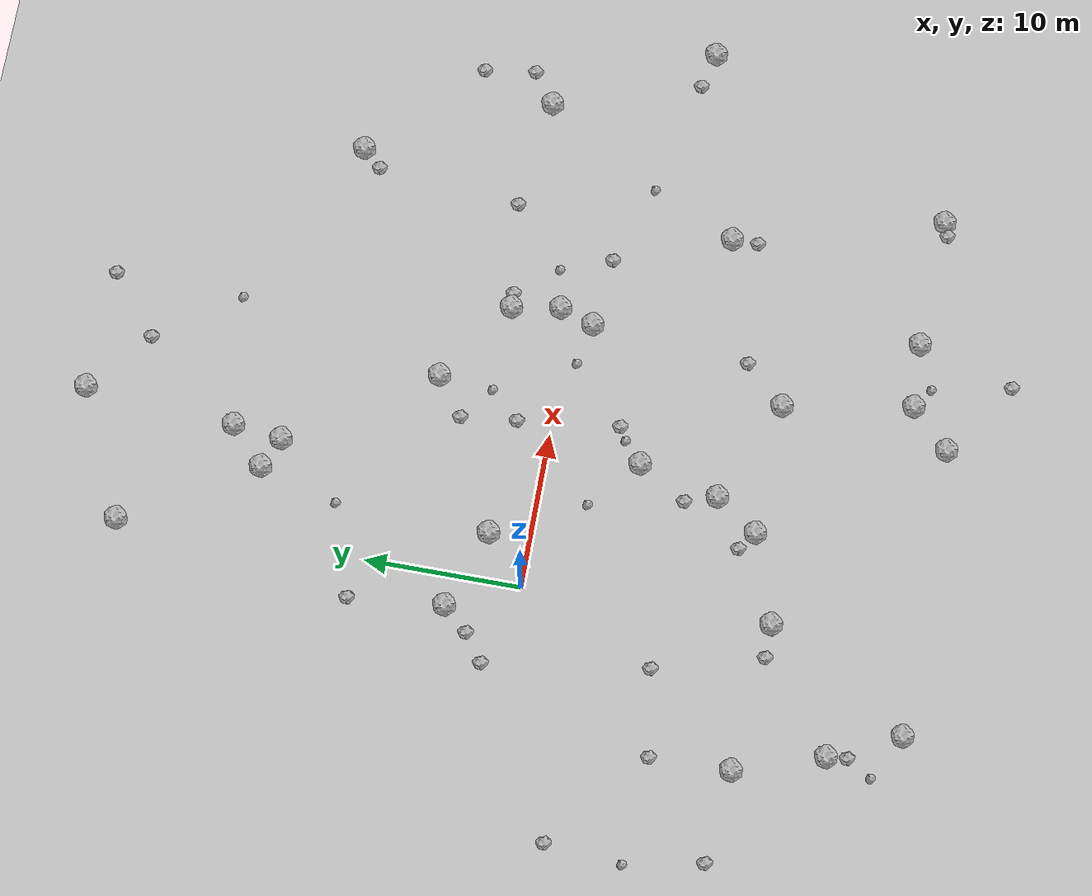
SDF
<sdf version="1.6">
 <world name="default">
  <include><uri>model://custom_ground</uri></include>
  <include><uri>model://sun</uri></include>
  <model name="rock1_0_0">
   <include><uri>model://rock1</uri><pose>-0.13717001291943376 25.787154543660918 0.5 0 0 0</pose></include>
  </model>
  <model name="rock1_0_1">
   <include><uri>model://rock1</uri><pose>4.755294397749029 17.537682692599823 0.5 0 0 0</pose></include>
  </model>
  <model name="rock1_0_2">
   <include><uri>model://rock1</uri><pose>14.438561846816263 -14.088238945821857 0.5 0 0 0</pose></include>
  </model>
  <model name="rock1_0_3">
   <include><uri>model://rock1</uri><pose>18.343334891461048 0.8101133850448186 0.5 0 0 0</pose></include>
  </model>
  <model name="rock1_0_4">
   <include><uri>model://rock1</uri><pose>7.934947623881193 29.443009117658633 0.5 0 0 0</pose></include>
  </model>
  <model name="rock1_0_5">
   <include><uri>model://rock1</uri><pose>6.005714709265444 -13.76198931600267 0.5 0 0 0</pose></include>
  </model>
  <model name="rock1_0_6">
   <include><uri>model://rock1</uri><pose>6.742528823899189 16.622186876741225 0.5 0 0 0</pose></include>
  </model>
  <model name="rock1_0_7">
   <include><uri>model://rock1</uri><pose>3.082100766277584 2.6522618058660825 0.5 0 0 0</pose></include>
  </model>
  <model name="rock1_0_8">
   <include><uri>model://rock1</uri><pose>9.127228379113777 -5.91440779899375 0.5 0 0 0</pose></include>
  </model>
  <model name="rock1_0_9">
   <include><uri>model://rock1</uri><pose>19.98494203032096 -22.07028369685764 0.5 0 0 0</pose></include>
  </model>
  <model name="rock1_0_10">
   <include><uri>model://rock1</uri><pose>24.811240526510602 -9.189557394420866 0.5 0 0 0</pose></include>
  </model>
  <model name="rock1_0_11">
   <include><uri>model://rock1</uri><pose>7.872476988000852 -11.043745803397222 0.5 0 0 0</pose></include>
  </model>
  <model name="rock1_0_12">
   <include><uri>model://rock1</uri><pose>12.601587128168205 7.579184512274907 0.5 0 0 0</pose></include>
  </model>
  <model name="rock1_0_13">
   <include><uri>model://rock1</uri><pose>17.61642601987898 -1.388534608510696 0.5 0 0 0</pose></include>
  </model>
  <model name="rock1_0_14">
   <include><uri>model://rock1</uri><pose>0.4175088909901419 -15.674244092253709 0.5 0 0 0</pose></include>
  </model>
  <model name="rock1_0_15">
   <include><uri>model://rock1</uri><pose>15.86766222540777 -22.288233859832335 0.5 0 0 0</pose></include>
  </model>
  <model name="rock1_0_16">
   <include><uri>model://rock1</uri><pose>26.712938988913102 15.159791982546686 0.5 0 0 0</pose></include>
  </model>
  <model name="rock1_0_17">
   <include><uri>model://rock1</uri><pose>13.399954540065664 -24.73991786673274 0.5 0 0 0</pose></include>
  </model>
  <model name="rock1_0_18">
   <include><uri>model://rock1</uri><pose>17.841486683517367 3.8988279427927566 0.5 0 0 0</pose></include>
  </model>
  <model name="rock1_0_19">
   <include><uri>model://rock1</uri><pose>-9.06617865886642 -14.71626676128436 0.5 0 0 0</pose></include>
  </model>
  <model name="rock1_0_20">
   <include><uri>model://rock1</uri><pose>-7.199097823117505 -20.317903175617555 0.5 0 0 0</pose></include>
  </model>
  <model name="rock1_0_21">
   <include><uri>model://rock1</uri><pose>28.329822835398595 -22.413514123052458 0.5 0 0 0</pose></include>
  </model>
  <model name="rock1_0_22">
   <include><uri>model://rock1</uri><pose>7.1317383234388885 19.758631122728573 0.5 0 0 0</pose></include>
  </model>
  <model name="rock1_0_23">
   <include><uri>model://rock1</uri><pose>-1.9601667741429623 4.525267203646457 0.5 0 0 0</pose></include>
  </model>
  <model name="rock1_0_24">
   <include><uri>model://rock1</uri><pose>37.107611091518855 -6.110001650317422 0.5 0 0 0</pose></include>
  </model>
  <model name="rock1_0_25">
   <include><uri>model://rock1</uri><pose>-5.1066198707219925 -24.76074350758809 0.5 0 0 0</pose></include>
  </model>
  <model name="rock1_0_26">
   <include><uri>model://rock1</uri><pose>31.873386687712788 3.7615670159366275 0.5 0 0 0</pose></include>
  </model>
  <model name="rock2_0_0">
   <include><uri>model://rock2</uri><pose>-15.505533679320898 -4.191615136256125 0.3 0 0 0</pose></include>
  </model>
  <model name="rock2_0_1">
   <include><uri>model://rock2</uri><pose>15.664136243920538 29.156066775808462 0.3 0 0 0</pose></include>
  </model>
  <model name="rock2_0_2">
   <include><uri>model://rock2</uri><pose>24.83080728630417 -10.860275217173086 0.3 0 0 0</pose></include>
  </model>
  <model name="rock2_0_3">
   <include><uri>model://rock2</uri><pose>11.888701404437157 26.08027218640691 0.3 0 0 0</pose></include>
  </model>
  <model name="rock2_0_4">
   <include><uri>model://rock2</uri><pose>-3.441075141844351 2.9077247807568725 0.3 0 0 0</pose></include>
  </model>
  <model name="rock2_0_5">
   <include><uri>model://rock2</uri><pose>-5.1742602773557085 1.6482350600616194 0.3 0 0 0</pose></include>
  </model>
  <model name="rock2_0_6">
   <include><uri>model://rock2</uri><pose>22.09416843919969 -1.9194810866440513 0.3 0 0 0</pose></include>
  </model>
  <model name="rock2_0_7">
   <include><uri>model://rock2</uri><pose>-1.7261564692264777 -15.651298210043453 0.3 0 0 0</pose></include>
  </model>
  <model name="rock2_0_8">
   <include><uri>model://rock2</uri><pose>18.810477787363226 3.952699722879295 0.3 0 0 0</pose></include>
  </model>
  <model name="rock2_0_9">
   <include><uri>model://rock2</uri><pose>4.8237271269217175 -12.893000180496863 0.3 0 0 0</pose></include>
  </model>
  <model name="rock2_0_10">
   <include><uri>model://rock2</uri><pose>33.85915778559707 5.227087870460387 0.3 0 0 0</pose></include>
  </model>
  <model name="rock2_0_11">
   <include><uri>model://rock2</uri><pose>-9.158188849551571 -9.604825247174823 0.3 0 0 0</pose></include>
  </model>
  <model name="rock2_0_12">
   <include><uri>model://rock2</uri><pose>24.746320326775454 4.7264321363283415 0.3 0 0 0</pose></include>
  </model>
  <model name="rock2_0_13">
   <include><uri>model://rock2</uri><pose>25.593575124300436 13.959871537229454 0.3 0 0 0</pose></include>
  </model>
  <model name="rock2_0_14">
   <include><uri>model://rock2</uri><pose>-3.6651809263949247 -8.7746673910484 0.3 0 0 0</pose></include>
  </model>
  <model name="rock2_0_15">
   <include><uri>model://rock2</uri><pose>-7.056426561365296 -21.63155775140372 0.3 0 0 0</pose></include>
  </model>
  <model name="rock2_0_16">
   <include><uri>model://rock2</uri><pose>-2.557756205376453 10.60147358255351 0.3 0 0 0</pose></include>
  </model>
  <model name="rock2_0_17">
   <include><uri>model://rock2</uri><pose>-14.983702069043488 -14.078534943867325 0.3 0 0 0</pose></include>
  </model>
  <model name="rock2_0_18">
   <include><uri>model://rock2</uri><pose>33.404064493828024 8.494527970908209 0.3 0 0 0</pose></include>
  </model>
  <model name="rock2_0_19">
   <include><uri>model://rock2</uri><pose>7.22022324230435 -9.043388758126007 0.3 0 0 0</pose></include>
  </model>
  <model name="rock2_0_20">
   <include><uri>model://rock2</uri><pose>16.8429033490402 -11.51908300537459 0.3 0 0 0</pose></include>
  </model>
  <model name="rock2_0_21">
   <include><uri>model://rock2</uri><pose>10.154396560830591 5.790304456932901 0.3 0 0 0</pose></include>
  </model>
  <model name="rock2_0_22">
   <include><uri>model://rock2</uri><pose>34.792454512386506 -5.523801355680217 0.3 0 0 0</pose></include>
  </model>
  <model name="rock2_0_23">
   <include><uri>model://rock2</uri><pose>11.30826156618097 -4.278075563324979 0.3 0 0 0</pose></include>
  </model>
  <model name="rock2_0_24">
   <include><uri>model://rock2</uri><pose>10.545027435177538 2.2303641010759208 0.3 0 0 0</pose></include>
  </model>
  <model name="rock2_0_25">
   <include><uri>model://rock2</uri><pose>18.183104315695147 -28.235213348727687 0.3 0 0 0</pose></include>
  </model>
  <model name="rock2_0_26">
   <include><uri>model://rock2</uri><pose>27.465588843426367 -22.727763470628506 0.3 0 0 0</pose></include>
  </model>
  <model name="rock3_0_0">
   <include><uri>model://rock3</uri><pose>15.487844069862561 20.854846258581567 0.2 0 0 0</pose></include>
  </model>
  <model name="rock3_0_1">
   <include><uri>model://rock3</uri><pose>-8.066230140236584 -23.26952898099539 0.2 0 0 0</pose></include>
  </model>
  <model name="rock3_0_2">
   <include><uri>model://rock3</uri><pose>5.932372791855535 -3.139069074772884 0.2 0 0 0</pose></include>
  </model>
  <model name="rock3_0_3">
   <include><uri>model://rock3</uri><pose>-15.98691062097917 -9.142206645270488 0.2 0 0 0</pose></include>
  </model>
  <model name="rock3_0_4">
   <include><uri>model://rock3</uri><pose>12.25000197345905 4.086588101150674 0.2 0 0 0</pose></include>
  </model>
  <model name="rock3_0_5">
   <include><uri>model://rock3</uri><pose>10.43956074592272 -4.778884660912098 0.2 0 0 0</pose></include>
  </model>
  <model name="rock3_0_6">
   <include><uri>model://rock3</uri><pose>3.2538648692890106 12.45356676171648 0.2 0 0 0</pose></include>
  </model>
  <model name="rock3_0_7">
   <include><uri>model://rock3</uri><pose>27.234893838302547 -3.8115623460461947 0.2 0 0 0</pose></include>
  </model>
  <model name="rock3_0_8">
   <include><uri>model://rock3</uri><pose>17.144603735362182 -23.267474388527987 0.2 0 0 0</pose></include>
  </model>
  <model name="rock3_0_9">
   <include><uri>model://rock3</uri><pose>14.898834381864674 -0.8614510669448947 0.2 0 0 0</pose></include>
  </model>
  <model name="rock3_0_10">
   <include><uri>model://rock3</uri><pose>20.85345015404593 1.2873101796112891 0.2 0 0 0</pose></include>
  </model>
 </world>
</sdf>
